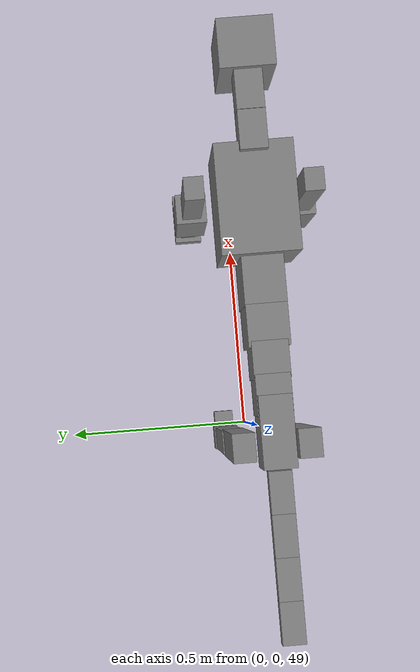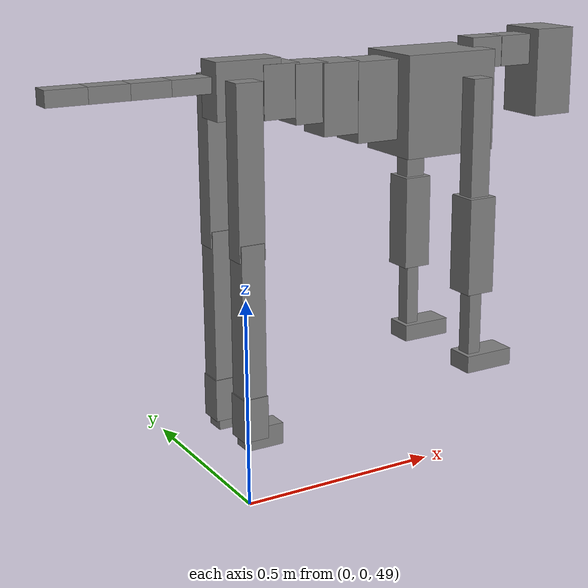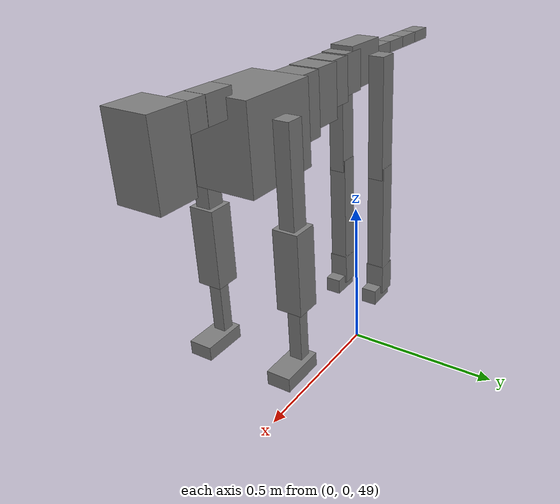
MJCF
<mujoco model="dog">

    <default>
        <joint armature="0.02" stiffness="1" damping="0.2" limited="true"/>
        <geom condim="3" friction="1 0.05 0.05" margin="0.01"/>
        <motor ctrllimited="true" ctrlrange="-1.0 1.0" forcelimited="true" gear="50"/>
    </default>

    <compiler inertiafromgeom="true" angle="radian"/>

    <option timestep="0.016" iterations="50" tolerance="1e-10" solver="Newton" jacobian="dense" cone="pyramidal"/>

    <size nconmax="20000" njmax="60000" nstack="5000000"/>
    <visual>
        <map force="0.1" zfar="30"/>
        <rgba haze="0.15 0.25 0.35 1"/>
        <quality shadowsize="2048"/>
        <global offwidth="800" offheight="800"/>
    </visual>

    <asset>
        <texture type="skybox" builtin="gradient" rgb1="0.3 0.5 0.7" rgb2="0 0 0" width="512" height="512"/>
        <texture name="texplane" type="2d" builtin="checker" rgb1=".2 .3 .4" rgb2=".1 0.15 0.2" width="512" height="512"
                 mark="cross" markrgb=".8 .8 .8"/>
        <texture name="texgeom" type="cube" builtin="flat" mark="cross" width="127" height="1278" rgb1="0.8 0.6 0.4"
                 rgb2="0.8 0.6 0.4" markrgb="1 1 1" random="0.01"/>

        <material name="matplane" reflectance="0.3" texture="texplane" texrepeat="1 1" texuniform="true"/>
        <material name="matgeom" texture="texgeom" texuniform="true" rgba="0.8 0.6 .4 1"/>
    </asset>

    <worldbody>
        <geom name="floor" pos="0 0 0" size="0 0 .25" type="plane" material="matplane" condim="3"/>

        <light directional="false" diffuse=".2 .2 .2" specular="0 0 0" pos="0 0 5" dir="0 0 -1" castshadow="false"/>
        <light mode="targetbodycom" target="torso" directional="false" diffuse=".8 .8 .8" specular="0.3 0.3 0.3"
               pos="0 0 4.0" dir="0 0 -1"/>

        <body name="root" pos="0 0 50">
            <freejoint name="root_1"/>
            <geom type="box" pos="0 0 -0.02" size="0.0774  0.0358  0.063" density="2030"/>

            <body name="spine1" pos="0.054 0 0">
                <joint name="spine1_y" axis="0 1 0" range="0 0.7" limited="true"/>
                <geom type="box" pos="0.02375 0 -0.03" size="0.04375  0.0375  0.05985" density="2030"/>

                <body name="spine2" pos="0.0612 0 0">
                    <joint name="spine2_y" axis="0 1 0" range="-0.15 0.15" limited="true"/>
                    <geom type="box" pos="0.03555  0  -0.04" size="0.04055  0.039  0.06615" density="2030"/>

                    <body name="spine3" pos="0.0730 0 0">
                        <joint name="spine3_y" axis="0 1 0" range="-0.15 0.15" limited="true"/>
                        <geom type="box" pos="0.03555  0  -0.057" size="0.04555  0.0445  0.081" density="2030"/>

                        <body name="spine4" pos="0.0780 0 0">
                            <joint name="spine4_y" axis="0 1 0" range="-0.15 0.15" limited="true"/>
                            <geom type="box" pos="0.05265  0  -0.07" size="0.05265  0.045  0.09135" density="2030"/>

                            <body name="torso" pos="0.1082 0 0">
                                <joint name="torso_y" axis="0 1 0" range="-0.15 0.15" limited="true"/>
                                <geom type="box" pos="0.11925  0  -0.085" size="0.11925  0.085  0.11745"
                                      density="2030"/>

                                <body name="neck1" pos="0.2160  0   0.0180">
                                    <joint name="neck1_y" axis="0 1 0" range="-1.2  -1" limited="true"/>
                                    <geom type="box" pos="0.0423  0  0" size="0.0423  0.03  0.036" density="2325"/>

                                    <body name="neck2" pos="0.0853  0  0">
                                        <joint name="neck2_y" axis="0 1 0" range="0.1  0" limited="true"/>
                                        <geom type="box" pos="0.0423  0  0" size="0.0423  0.03  0.036" density="2325"/>

                                        <body name="head" pos="0.0853  0  0">
                                            <joint name="head_y" axis="0 1 0" range="-0.3  -0.2" limited="true"/>
                                            <geom type="box" pos="0.0531  0  -0.055" size="0.0531  0.06  0.1044"
                                                  density="4030"/>

                                        </body>
                                    </body>
                                </body>

                                <body name="front_shoulder" pos="0.156  0   -0.0480">
                                    <joint name="front_shoulder_y" axis="0 1 0" range="-1 1.5" limited="true"/>
                                    <geom type="box" pos="0 0.13 -0.1233" size="0.0254  0.0218  0.1500" density="1158"/>
                                    <geom type="box" pos="0 -0.13 -0.1233" size="0.0254  0.0218  0.1500"
                                          density="1158"/>

                                    <body name="front_elbow" pos="0  0  -0.2467">
                                        <joint name="front_elbow_y" axis="0 1 0" range="-2 0" limited="true"/>
                                        <geom type="box" pos="0 0.13 -0.1146" size="0.0352  0.0360  0.1146"
                                              density="1081"/>
                                        <geom type="box" pos="0 -0.13 -0.1146" size="0.0352  0.0360  0.1146"
                                              density="1081"/>

                                        <body name="front_wrist" pos="0  0  -0.2292">
                                            <joint name="front_wrist_y" axis="0 1 0" range="-0.2 0" limited="true"/>
                                            <geom type="box" pos="0 0.13 -0.0841" size="0.0167  0.0185  0.0973"
                                                  density="1664"/>
                                            <geom type="box" pos="0 -0.13 -0.0841" size="0.0167  0.0185  0.0973"
                                                  density="1664"/>

                                            <body name="front_finger_end" pos="0  0  -0.1683">
                                                <joint name="front_finger_y" axis="0 1 0" range="-0.4 1"
                                                       limited="true"/>
                                                <geom type="box" pos="0.0343  0.13  -0.0055"
                                                      size="0.0628  0.0343  0.0205" density="1515"/>
                                                <geom type="box" pos="0.0343  -0.13  -0.0055"
                                                      size="0.0628  0.0343  0.0205" density="1515"/>

                                            </body>

                                        </body>
                                    </body>
                                </body>

                            </body>
                        </body>
                    </body>
                </body>
            </body>

            <body name="back_hip" pos="-0.03 0 -0.018">
                <joint name="back_hip_y" axis="0 1 0" range="-1.5 0.3" limited="true"/>
                <geom type="box" pos="0 0.07 -0.1697" size="0.0313  0.0246  0.1925" density="1154"/>
                <geom type="box" pos="0 -0.07 -0.1697" size="0.0313  0.0246  0.1925" density="1154"/>

                <body name="back_knee" pos="0  0  -0.3395">
                    <joint name="back_knee_y" axis="0 1 0" range="0 2.8" limited="true"/>
                    <geom type="box" pos="0 0.07 -0.1730" size="0.0279  0.0275  0.1885" density="1227"/>
                    <geom type="box" pos="0 -0.07 -0.1730" size="0.0279  0.0275  0.1885" density="1227"/>

                    <body name="back_ankle" pos="0  0  -0.3460">
                        <joint name="back_ankle_y" axis="0 1 0" range="-2.2 0" limited="true"/>
                        <geom type="box" pos="0 0.07 -0.0389" size="0.0301  0.0301  0.0502" density="1284"/>
                        <geom type="box" pos="0 -0.07 -0.0389" size="0.0301  0.0301  0.0502" density="1284"/>

                        <body name="back_toe_end" pos="0  0  -0.0779">
                            <joint name="back_toe_y" axis="0 1 0" range="-0.4 1" limited="true"/>
                            <geom type="box" pos="0.0246  0.07  -0.0103" size="0.0451  0.0246  0.0253" density="1515"/>
                            <geom type="box" pos="0.0246  -0.07  -0.0103" size="0.0451  0.0246  0.0253" density="1515"/>

                        </body>
                    </body>
                </body>
            </body>

            <body name="tail1" pos="-0.074 0 -0.006">
                <joint name="tail1_y" axis="0 1 0" range="-0.2 0.2" limited="true"/>
                <geom type="box" pos="-0.0536  0  0" size="0.045  0.025  0.0175" density="1587"/>

                <body name="tail2" pos="-0.09 0 0">
                    <joint name="tail2_y" axis="0 1 0" range="-0.2 0.2" limited="true"/>
                    <geom type="box" pos="-0.0536  0  0" size="0.045  0.025  0.0175" density="1587"/>

                    <body name="tail3" pos="-0.09 0 0">
                        <joint name="tail3_y" axis="0 1 0" range="-0.2 0.2" limited="true"/>
                        <geom type="box" pos="-0.0536  0  0" size="0.045  0.025  0.0175" density="1587"/>

                        <body name="tail4" pos="-0.09 0 0">
                            <joint name="tail4_y" axis="0 1 0" range="-0.2 0.2" limited="true"/>
                            <geom type="box" pos="-0.0536  0  0" size="0.045  0.025  0.0175" density="1587"/>

                        </body>
                    </body>
                </body>
            </body>
        </body>
    </worldbody>

    <actuator>
        <motor joint="spine1_y" forcerange="-150 150     "/>
        <motor joint="spine2_y" forcerange="-150 150     "/>
        <motor joint="spine3_y" forcerange="-150 150     "/>
        <motor joint="spine4_y" forcerange="-150 150     "/>
        <motor joint="torso_y" forcerange="-150 150     "/>
        <motor joint="neck1_y" forcerange="-100 100       "/>
        <motor joint="neck2_y" forcerange="-100 100       "/>
        <motor joint="head_y" forcerange="-150 150       "/>
        <motor joint="front_shoulder_y" forcerange="-128.88 116.13"/>
        <motor joint="front_elbow_y" forcerange="-185.86 176.04"/>
        <motor joint="front_wrist_y" forcerange="-88.56 59.80"/>
        <motor joint="front_finger_y" forcerange="-77.40 65.31"/>
        <motor joint="back_hip_y" forcerange="-313.17 214.51"/>
        <motor joint="back_knee_y" forcerange="-248.77 351.03"/>
        <motor joint="back_angle_y" forcerange="-151.04 230.62"/>
        <motor joint="back_toe_y" forcerange="-33.57 83.11"/>
        <motor joint="tail1_y" forcerange="-50 50     "/>
        <motor joint="tail2_y" forcerange="-50 50     "/>
        <motor joint="tail3_y" forcerange="-50 50     "/>
        <motor joint="tail4_y" forcerange="-50 50     "/>
    </actuator>
</mujoco>
